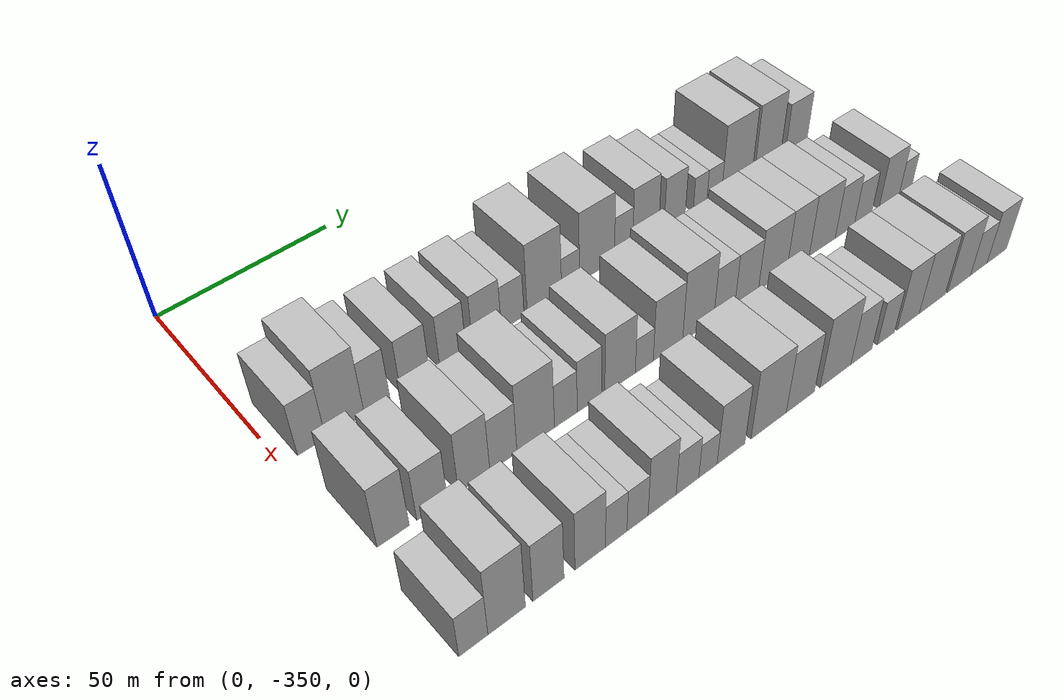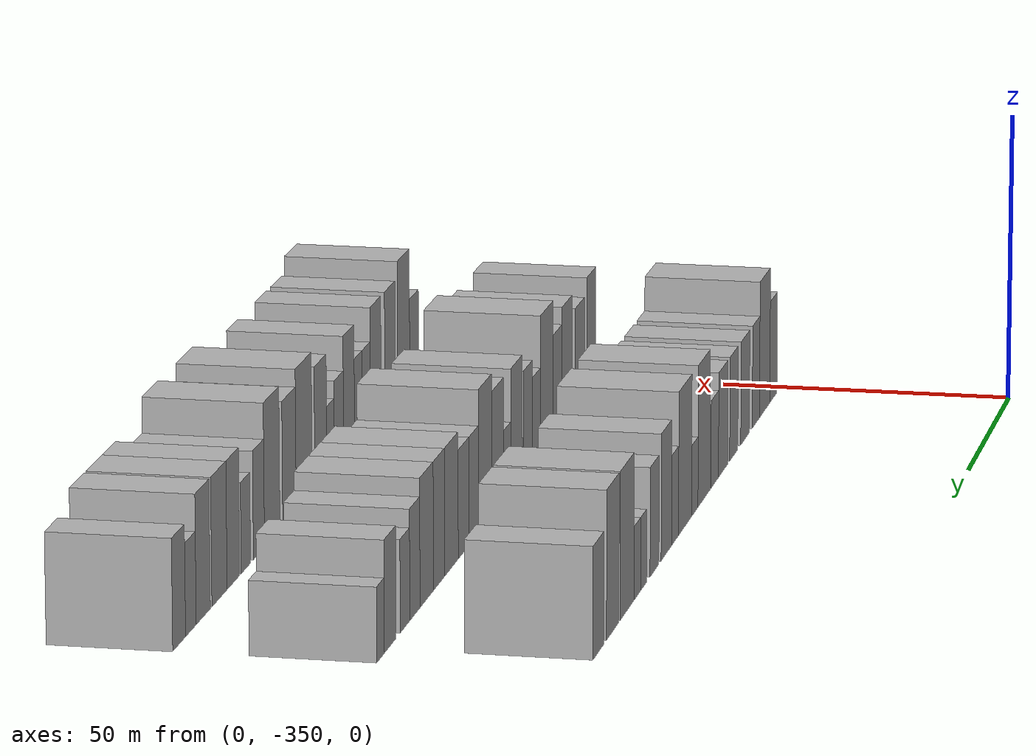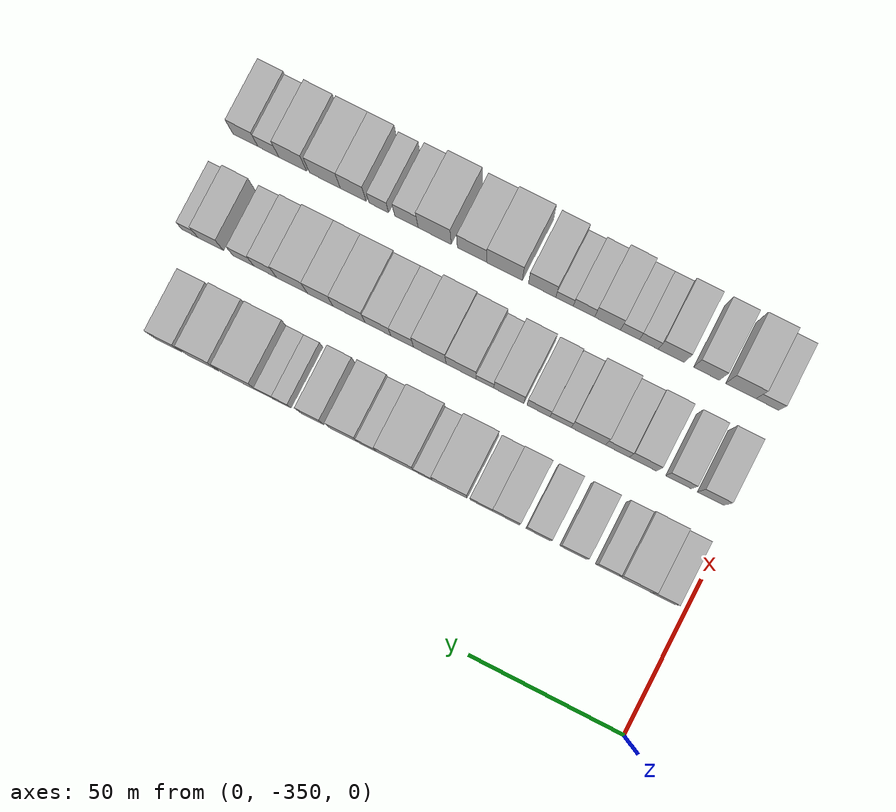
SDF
<sdf version="1.6">
 <world name="default">
  <model name="building_1">
   <static>1</static>
   <pose>50.0000 -342.2190 0 0.000000 0.000000 0.000000</pose>
   <link name="link">
    <pose>0 0 9.00 0 0 0</pose>
    <collision name="collision"><geometry><box><size>20.0000 7.5620 18.0000</size></box></geometry></collision>
    <visual name="visual">
     <cast_shadows>0</cast_shadows>
     <geometry><box><size>20.0000 7.5620 18.0000</size></box></geometry>
     <material>
      <script>
       <uri>model://HANNAS_wall/materials/scripts</uri>
       <uri>model://HANNAS_wall/materials/textures</uri>
       <name>vrc/HANNAS_wall</name>
      </script>
     </material>
    </visual>
   </link>
  </model>
  <model name="building_2">
   <static>1</static>
   <pose>50.0000 -333.1310 0 0.000000 0.000000 0.000000</pose>
   <link name="link">
    <pose>0 0 12.00 0 0 0</pose>
    <collision name="collision"><geometry><box><size>20.0000 10.6140 24.0000</size></box></geometry></collision>
    <visual name="visual">
     <cast_shadows>0</cast_shadows>
     <geometry><box><size>20.0000 10.6140 24.0000</size></box></geometry>
     <material>
      <script>
       <uri>model://HANNAS_wall/materials/scripts</uri>
       <uri>model://HANNAS_wall/materials/textures</uri>
       <name>vrc/HANNAS_wall</name>
      </script>
     </material>
    </visual>
   </link>
  </model>
  <model name="building_3">
   <static>1</static>
   <pose>50.0000 -324.1994 0 0.000000 0.000000 0.000000</pose>
   <link name="link">
    <pose>0 0 9.00 0 0 0</pose>
    <collision name="collision"><geometry><box><size>20.0000 7.2493 18.0000</size></box></geometry></collision>
    <visual name="visual">
     <cast_shadows>0</cast_shadows>
     <geometry><box><size>20.0000 7.2493 18.0000</size></box></geometry>
     <material>
      <script>
       <uri>model://HANNAS_wall/materials/scripts</uri>
       <uri>model://HANNAS_wall/materials/textures</uri>
       <name>vrc/HANNAS_wall</name>
      </script>
     </material>
    </visual>
   </link>
  </model>
  <model name="building_4">
   <static>1</static>
   <pose>50.0000 -313.3066 0 0.000000 0.000000 0.000000</pose>
   <link name="link">
    <pose>0 0 9.00 0 0 0</pose>
    <collision name="collision"><geometry><box><size>20.0000 8.5363 18.0000</size></box></geometry></collision>
    <visual name="visual">
     <cast_shadows>0</cast_shadows>
     <geometry><box><size>20.0000 8.5363 18.0000</size></box></geometry>
     <material>
      <script>
       <uri>model://HANNAS_wall/materials/scripts</uri>
       <uri>model://HANNAS_wall/materials/textures</uri>
       <name>vrc/HANNAS_wall</name>
      </script>
     </material>
    </visual>
   </link>
  </model>
  <model name="building_5">
   <static>1</static>
   <pose>50.0000 -302.0713 0 0.000000 0.000000 0.000000</pose>
   <link name="link">
    <pose>0 0 9.00 0 0 0</pose>
    <collision name="collision"><geometry><box><size>20.0000 7.9341 18.0000</size></box></geometry></collision>
    <visual name="visual">
     <cast_shadows>0</cast_shadows>
     <geometry><box><size>20.0000 7.9341 18.0000</size></box></geometry>
     <material>
      <script>
       <uri>model://HANNAS_wall/materials/scripts</uri>
       <uri>model://HANNAS_wall/materials/textures</uri>
       <name>vrc/HANNAS_wall</name>
      </script>
     </material>
    </visual>
   </link>
  </model>
  <model name="building_6">
   <static>1</static>
   <pose>50.0000 -291.6735 0 0.000000 0.000000 0.000000</pose>
   <link name="link">
    <pose>0 0 9.00 0 0 0</pose>
    <collision name="collision"><geometry><box><size>20.0000 8.8616 18.0000</size></box></geometry></collision>
    <visual name="visual">
     <cast_shadows>0</cast_shadows>
     <geometry><box><size>20.0000 8.8616 18.0000</size></box></geometry>
     <material>
      <script>
       <uri>model://HANNAS_wall/materials/scripts</uri>
       <uri>model://HANNAS_wall/materials/textures</uri>
       <name>vrc/HANNAS_wall</name>
      </script>
     </material>
    </visual>
   </link>
  </model>
  <model name="building_7">
   <static>1</static>
   <pose>50.0000 -283.6404 0 0.000000 0.000000 0.000000</pose>
   <link name="link">
    <pose>0 0 7.50 0 0 0</pose>
    <collision name="collision"><geometry><box><size>20.0000 7.2044 15.0000</size></box></geometry></collision>
    <visual name="visual">
     <cast_shadows>0</cast_shadows>
     <geometry><box><size>20.0000 7.2044 15.0000</size></box></geometry>
     <material>
      <script>
       <uri>model://HANNAS_wall/materials/scripts</uri>
       <uri>model://HANNAS_wall/materials/textures</uri>
       <name>vrc/HANNAS_wall</name>
      </script>
     </material>
    </visual>
   </link>
  </model>
  <model name="building_8">
   <static>1</static>
   <pose>50.0000 -273.4399 0 0.000000 0.000000 0.000000</pose>
   <link name="link">
    <pose>0 0 12.00 0 0 0</pose>
    <collision name="collision"><geometry><box><size>20.0000 11.1966 24.0000</size></box></geometry></collision>
    <visual name="visual">
     <cast_shadows>0</cast_shadows>
     <geometry><box><size>20.0000 11.1966 24.0000</size></box></geometry>
     <material>
      <script>
       <uri>model://HANNAS_wall/materials/scripts</uri>
       <uri>model://HANNAS_wall/materials/textures</uri>
       <name>vrc/HANNAS_wall</name>
      </script>
     </material>
    </visual>
   </link>
  </model>
  <model name="building_9">
   <static>1</static>
   <pose>50.0000 -264.8591 0 0.000000 0.000000 0.000000</pose>
   <link name="link">
    <pose>0 0 6.00 0 0 0</pose>
    <collision name="collision"><geometry><box><size>20.0000 5.9650 12.0000</size></box></geometry></collision>
    <visual name="visual">
     <cast_shadows>0</cast_shadows>
     <geometry><box><size>20.0000 5.9650 12.0000</size></box></geometry>
     <material>
      <script>
       <uri>model://HANNAS_wall/materials/scripts</uri>
       <uri>model://HANNAS_wall/materials/textures</uri>
       <name>vrc/HANNAS_wall</name>
      </script>
     </material>
    </visual>
   </link>
  </model>
  <model name="building_10">
   <static>1</static>
   <pose>50.0000 -255.8999 0 0.000000 0.000000 0.000000</pose>
   <link name="link">
    <pose>0 0 12.00 0 0 0</pose>
    <collision name="collision"><geometry><box><size>20.0000 11.9535 24.0000</size></box></geometry></collision>
    <visual name="visual">
     <cast_shadows>0</cast_shadows>
     <geometry><box><size>20.0000 11.9535 24.0000</size></box></geometry>
     <material>
      <script>
       <uri>model://HANNAS_wall/materials/scripts</uri>
       <uri>model://HANNAS_wall/materials/textures</uri>
       <name>vrc/HANNAS_wall</name>
      </script>
     </material>
    </visual>
   </link>
  </model>
  <model name="building_11">
   <static>1</static>
   <pose>50.0000 -246.7564 0 0.000000 0.000000 0.000000</pose>
   <link name="link">
    <pose>0 0 7.50 0 0 0</pose>
    <collision name="collision"><geometry><box><size>20.0000 6.3335 15.0000</size></box></geometry></collision>
    <visual name="visual">
     <cast_shadows>0</cast_shadows>
     <geometry><box><size>20.0000 6.3335 15.0000</size></box></geometry>
     <material>
      <script>
       <uri>model://HANNAS_wall/materials/scripts</uri>
       <uri>model://HANNAS_wall/materials/textures</uri>
       <name>vrc/HANNAS_wall</name>
      </script>
     </material>
    </visual>
   </link>
  </model>
  <model name="building_12">
   <static>1</static>
   <pose>50.0000 -238.9504 0 0.000000 0.000000 0.000000</pose>
   <link name="link">
    <pose>0 0 10.50 0 0 0</pose>
    <collision name="collision"><geometry><box><size>20.0000 9.2785 21.0000</size></box></geometry></collision>
    <visual name="visual">
     <cast_shadows>0</cast_shadows>
     <geometry><box><size>20.0000 9.2785 21.0000</size></box></geometry>
     <material>
      <script>
       <uri>model://HANNAS_wall/materials/scripts</uri>
       <uri>model://HANNAS_wall/materials/textures</uri>
       <name>vrc/HANNAS_wall</name>
      </script>
     </material>
    </visual>
   </link>
  </model>
  <model name="building_13">
   <static>1</static>
   <pose>50.0000 -228.4290 0 0.000000 0.000000 0.000000</pose>
   <link name="link">
    <pose>0 0 9.00 0 0 0</pose>
    <collision name="collision"><geometry><box><size>20.0000 7.7644 18.0000</size></box></geometry></collision>
    <visual name="visual">
     <cast_shadows>0</cast_shadows>
     <geometry><box><size>20.0000 7.7644 18.0000</size></box></geometry>
     <material>
      <script>
       <uri>model://HANNAS_wall/materials/scripts</uri>
       <uri>model://HANNAS_wall/materials/textures</uri>
       <name>vrc/HANNAS_wall</name>
      </script>
     </material>
    </visual>
   </link>
  </model>
  <model name="building_14">
   <static>1</static>
   <pose>50.0000 -219.0100 0 0.000000 0.000000 0.000000</pose>
   <link name="link">
    <pose>0 0 6.00 0 0 0</pose>
    <collision name="collision"><geometry><box><size>20.0000 5.0735 12.0000</size></box></geometry></collision>
    <visual name="visual">
     <cast_shadows>0</cast_shadows>
     <geometry><box><size>20.0000 5.0735 12.0000</size></box></geometry>
     <material>
      <script>
       <uri>model://HANNAS_wall/materials/scripts</uri>
       <uri>model://HANNAS_wall/materials/textures</uri>
       <name>vrc/HANNAS_wall</name>
      </script>
     </material>
    </visual>
   </link>
  </model>
  <model name="building_15">
   <static>1</static>
   <pose>50.0000 -213.6350 0 0.000000 0.000000 0.000000</pose>
   <link name="link">
    <pose>0 0 6.00 0 0 0</pose>
    <collision name="collision"><geometry><box><size>20.0000 5.6767 12.0000</size></box></geometry></collision>
    <visual name="visual">
     <cast_shadows>0</cast_shadows>
     <geometry><box><size>20.0000 5.6767 12.0000</size></box></geometry>
     <material>
      <script>
       <uri>model://HANNAS_wall/materials/scripts</uri>
       <uri>model://HANNAS_wall/materials/textures</uri>
       <name>vrc/HANNAS_wall</name>
      </script>
     </material>
    </visual>
   </link>
  </model>
  <model name="building_16">
   <static>1</static>
   <pose>50.0000 -204.8736 0 0.000000 0.000000 0.000000</pose>
   <link name="link">
    <pose>0 0 12.00 0 0 0</pose>
    <collision name="collision"><geometry><box><size>20.0000 11.8460 24.0000</size></box></geometry></collision>
    <visual name="visual">
     <cast_shadows>0</cast_shadows>
     <geometry><box><size>20.0000 11.8460 24.0000</size></box></geometry>
     <material>
      <script>
       <uri>model://HANNAS_wall/materials/scripts</uri>
       <uri>model://HANNAS_wall/materials/textures</uri>
       <name>vrc/HANNAS_wall</name>
      </script>
     </material>
    </visual>
   </link>
  </model>
  <model name="building_17">
   <static>1</static>
   <pose>50.0000 -192.7813 0 0.000000 0.000000 0.000000</pose>
   <link name="link">
    <pose>0 0 12.00 0 0 0</pose>
    <collision name="collision"><geometry><box><size>20.0000 10.3386 24.0000</size></box></geometry></collision>
    <visual name="visual">
     <cast_shadows>0</cast_shadows>
     <geometry><box><size>20.0000 10.3386 24.0000</size></box></geometry>
     <material>
      <script>
       <uri>model://HANNAS_wall/materials/scripts</uri>
       <uri>model://HANNAS_wall/materials/textures</uri>
       <name>vrc/HANNAS_wall</name>
      </script>
     </material>
    </visual>
   </link>
  </model>
  <model name="building_18">
   <static>1</static>
   <pose>50.0000 -181.1529 0 0.000000 0.000000 0.000000</pose>
   <link name="link">
    <pose>0 0 9.00 0 0 0</pose>
    <collision name="collision"><geometry><box><size>20.0000 8.9184 18.0000</size></box></geometry></collision>
    <visual name="visual">
     <cast_shadows>0</cast_shadows>
     <geometry><box><size>20.0000 8.9184 18.0000</size></box></geometry>
     <material>
      <script>
       <uri>model://HANNAS_wall/materials/scripts</uri>
       <uri>model://HANNAS_wall/materials/textures</uri>
       <name>vrc/HANNAS_wall</name>
      </script>
     </material>
    </visual>
   </link>
  </model>
  <model name="building_73">
   <static>1</static>
   <pose>82.0000 -341.7778 0 0.000000 0.000000 0.000000</pose>
   <link name="link">
    <pose>0 0 10.50 0 0 0</pose>
    <collision name="collision"><geometry><box><size>20.0000 8.4443 21.0000</size></box></geometry></collision>
    <visual name="visual">
     <cast_shadows>0</cast_shadows>
     <geometry><box><size>20.0000 8.4443 21.0000</size></box></geometry>
     <material>
      <script>
       <uri>model://HANNAS_wall/materials/scripts</uri>
       <uri>model://HANNAS_wall/materials/textures</uri>
       <name>vrc/HANNAS_wall</name>
      </script>
     </material>
    </visual>
   </link>
  </model>
  <model name="building_74">
   <static>1</static>
   <pose>82.0000 -331.4087 0 0.000000 0.000000 0.000000</pose>
   <link name="link">
    <pose>0 0 9.00 0 0 0</pose>
    <collision name="collision"><geometry><box><size>20.0000 8.2939 18.0000</size></box></geometry></collision>
    <visual name="visual">
     <cast_shadows>0</cast_shadows>
     <geometry><box><size>20.0000 8.2939 18.0000</size></box></geometry>
     <material>
      <script>
       <uri>model://HANNAS_wall/materials/scripts</uri>
       <uri>model://HANNAS_wall/materials/textures</uri>
       <name>vrc/HANNAS_wall</name>
      </script>
     </material>
    </visual>
   </link>
  </model>
  <model name="building_75">
   <static>1</static>
   <pose>82.0000 -319.8608 0 0.000000 0.000000 0.000000</pose>
   <link name="link">
    <pose>0 0 10.50 0 0 0</pose>
    <collision name="collision"><geometry><box><size>20.0000 8.8019 21.0000</size></box></geometry></collision>
    <visual name="visual">
     <cast_shadows>0</cast_shadows>
     <geometry><box><size>20.0000 8.8019 21.0000</size></box></geometry>
     <material>
      <script>
       <uri>model://HANNAS_wall/materials/scripts</uri>
       <uri>model://HANNAS_wall/materials/textures</uri>
       <name>vrc/HANNAS_wall</name>
      </script>
     </material>
    </visual>
   </link>
  </model>
  <model name="building_76">
   <static>1</static>
   <pose>82.0000 -311.5618 0 0.000000 0.000000 0.000000</pose>
   <link name="link">
    <pose>0 0 9.00 0 0 0</pose>
    <collision name="collision"><geometry><box><size>20.0000 7.7960 18.0000</size></box></geometry></collision>
    <visual name="visual">
     <cast_shadows>0</cast_shadows>
     <geometry><box><size>20.0000 7.7960 18.0000</size></box></geometry>
     <material>
      <script>
       <uri>model://HANNAS_wall/materials/scripts</uri>
       <uri>model://HANNAS_wall/materials/textures</uri>
       <name>vrc/HANNAS_wall</name>
      </script>
     </material>
    </visual>
   </link>
  </model>
  <model name="building_77">
   <static>1</static>
   <pose>82.0000 -302.1254 0 0.000000 0.000000 0.000000</pose>
   <link name="link">
    <pose>0 0 12.00 0 0 0</pose>
    <collision name="collision"><geometry><box><size>20.0000 11.0768 24.0000</size></box></geometry></collision>
    <visual name="visual">
     <cast_shadows>0</cast_shadows>
     <geometry><box><size>20.0000 11.0768 24.0000</size></box></geometry>
     <material>
      <script>
       <uri>model://HANNAS_wall/materials/scripts</uri>
       <uri>model://HANNAS_wall/materials/textures</uri>
       <name>vrc/HANNAS_wall</name>
      </script>
     </material>
    </visual>
   </link>
  </model>
  <model name="building_78">
   <static>1</static>
   <pose>82.0000 -293.1417 0 0.000000 0.000000 0.000000</pose>
   <link name="link">
    <pose>0 0 7.50 0 0 0</pose>
    <collision name="collision"><geometry><box><size>20.0000 6.8906 15.0000</size></box></geometry></collision>
    <visual name="visual">
     <cast_shadows>0</cast_shadows>
     <geometry><box><size>20.0000 6.8906 15.0000</size></box></geometry>
     <material>
      <script>
       <uri>model://HANNAS_wall/materials/scripts</uri>
       <uri>model://HANNAS_wall/materials/textures</uri>
       <name>vrc/HANNAS_wall</name>
      </script>
     </material>
    </visual>
   </link>
  </model>
  <model name="building_79">
   <static>1</static>
   <pose>82.0000 -285.9240 0 0.000000 0.000000 0.000000</pose>
   <link name="link">
    <pose>0 0 9.00 0 0 0</pose>
    <collision name="collision"><geometry><box><size>20.0000 7.5448 18.0000</size></box></geometry></collision>
    <visual name="visual">
     <cast_shadows>0</cast_shadows>
     <geometry><box><size>20.0000 7.5448 18.0000</size></box></geometry>
     <material>
      <script>
       <uri>model://HANNAS_wall/materials/scripts</uri>
       <uri>model://HANNAS_wall/materials/textures</uri>
       <name>vrc/HANNAS_wall</name>
      </script>
     </material>
    </visual>
   </link>
  </model>
  <model name="building_80">
   <static>1</static>
   <pose>82.0000 -276.2814 0 0.000000 0.000000 0.000000</pose>
   <link name="link">
    <pose>0 0 10.50 0 0 0</pose>
    <collision name="collision"><geometry><box><size>20.0000 9.7404 21.0000</size></box></geometry></collision>
    <visual name="visual">
     <cast_shadows>0</cast_shadows>
     <geometry><box><size>20.0000 9.7404 21.0000</size></box></geometry>
     <material>
      <script>
       <uri>model://HANNAS_wall/materials/scripts</uri>
       <uri>model://HANNAS_wall/materials/textures</uri>
       <name>vrc/HANNAS_wall</name>
      </script>
     </material>
    </visual>
   </link>
  </model>
  <model name="building_81">
   <static>1</static>
   <pose>82.0000 -268.4903 0 0.000000 0.000000 0.000000</pose>
   <link name="link">
    <pose>0 0 6.00 0 0 0</pose>
    <collision name="collision"><geometry><box><size>20.0000 5.8418 12.0000</size></box></geometry></collision>
    <visual name="visual">
     <cast_shadows>0</cast_shadows>
     <geometry><box><size>20.0000 5.8418 12.0000</size></box></geometry>
     <material>
      <script>
       <uri>model://HANNAS_wall/materials/scripts</uri>
       <uri>model://HANNAS_wall/materials/textures</uri>
       <name>vrc/HANNAS_wall</name>
      </script>
     </material>
    </visual>
   </link>
  </model>
  <model name="building_82">
   <static>1</static>
   <pose>82.0000 -260.6777 0 0.000000 0.000000 0.000000</pose>
   <link name="link">
    <pose>0 0 10.50 0 0 0</pose>
    <collision name="collision"><geometry><box><size>20.0000 9.7833 21.0000</size></box></geometry></collision>
    <visual name="visual">
     <cast_shadows>0</cast_shadows>
     <geometry><box><size>20.0000 9.7833 21.0000</size></box></geometry>
     <material>
      <script>
       <uri>model://HANNAS_wall/materials/scripts</uri>
       <uri>model://HANNAS_wall/materials/textures</uri>
       <name>vrc/HANNAS_wall</name>
      </script>
     </material>
    </visual>
   </link>
  </model>
  <model name="building_83">
   <static>1</static>
   <pose>82.0000 -250.4594 0 0.000000 0.000000 0.000000</pose>
   <link name="link">
    <pose>0 0 12.00 0 0 0</pose>
    <collision name="collision"><geometry><box><size>20.0000 10.6534 24.0000</size></box></geometry></collision>
    <visual name="visual">
     <cast_shadows>0</cast_shadows>
     <geometry><box><size>20.0000 10.6534 24.0000</size></box></geometry>
     <material>
      <script>
       <uri>model://HANNAS_wall/materials/scripts</uri>
       <uri>model://HANNAS_wall/materials/textures</uri>
       <name>vrc/HANNAS_wall</name>
      </script>
     </material>
    </visual>
   </link>
  </model>
  <model name="building_84">
   <static>1</static>
   <pose>82.0000 -241.4067 0 0.000000 0.000000 0.000000</pose>
   <link name="link">
    <pose>0 0 9.00 0 0 0</pose>
    <collision name="collision"><geometry><box><size>20.0000 7.4518 18.0000</size></box></geometry></collision>
    <visual name="visual">
     <cast_shadows>0</cast_shadows>
     <geometry><box><size>20.0000 7.4518 18.0000</size></box></geometry>
     <material>
      <script>
       <uri>model://HANNAS_wall/materials/scripts</uri>
       <uri>model://HANNAS_wall/materials/textures</uri>
       <name>vrc/HANNAS_wall</name>
      </script>
     </material>
    </visual>
   </link>
  </model>
  <model name="building_85">
   <static>1</static>
   <pose>82.0000 -233.4323 0 0.000000 0.000000 0.000000</pose>
   <link name="link">
    <pose>0 0 9.00 0 0 0</pose>
    <collision name="collision"><geometry><box><size>20.0000 8.4970 18.0000</size></box></geometry></collision>
    <visual name="visual">
     <cast_shadows>0</cast_shadows>
     <geometry><box><size>20.0000 8.4970 18.0000</size></box></geometry>
     <material>
      <script>
       <uri>model://HANNAS_wall/materials/scripts</uri>
       <uri>model://HANNAS_wall/materials/textures</uri>
       <name>vrc/HANNAS_wall</name>
      </script>
     </material>
    </visual>
   </link>
  </model>
  <model name="building_86">
   <static>1</static>
   <pose>82.0000 -223.9514 0 0.000000 0.000000 0.000000</pose>
   <link name="link">
    <pose>0 0 10.50 0 0 0</pose>
    <collision name="collision"><geometry><box><size>20.0000 10.4647 21.0000</size></box></geometry></collision>
    <visual name="visual">
     <cast_shadows>0</cast_shadows>
     <geometry><box><size>20.0000 10.4647 21.0000</size></box></geometry>
     <material>
      <script>
       <uri>model://HANNAS_wall/materials/scripts</uri>
       <uri>model://HANNAS_wall/materials/textures</uri>
       <name>vrc/HANNAS_wall</name>
      </script>
     </material>
    </visual>
   </link>
  </model>
  <model name="building_87">
   <static>1</static>
   <pose>82.0000 -214.4662 0 0.000000 0.000000 0.000000</pose>
   <link name="link">
    <pose>0 0 10.50 0 0 0</pose>
    <collision name="collision"><geometry><box><size>20.0000 8.5058 21.0000</size></box></geometry></collision>
    <visual name="visual">
     <cast_shadows>0</cast_shadows>
     <geometry><box><size>20.0000 8.5058 21.0000</size></box></geometry>
     <material>
      <script>
       <uri>model://HANNAS_wall/materials/scripts</uri>
       <uri>model://HANNAS_wall/materials/textures</uri>
       <name>vrc/HANNAS_wall</name>
      </script>
     </material>
    </visual>
   </link>
  </model>
  <model name="building_88">
   <static>1</static>
   <pose>82.0000 -205.1605 0 0.000000 0.000000 0.000000</pose>
   <link name="link">
    <pose>0 0 10.50 0 0 0</pose>
    <collision name="collision"><geometry><box><size>20.0000 10.1057 21.0000</size></box></geometry></collision>
    <visual name="visual">
     <cast_shadows>0</cast_shadows>
     <geometry><box><size>20.0000 10.1057 21.0000</size></box></geometry>
     <material>
      <script>
       <uri>model://HANNAS_wall/materials/scripts</uri>
       <uri>model://HANNAS_wall/materials/textures</uri>
       <name>vrc/HANNAS_wall</name>
      </script>
     </material>
    </visual>
   </link>
  </model>
  <model name="building_89">
   <static>1</static>
   <pose>82.0000 -196.3350 0 0.000000 0.000000 0.000000</pose>
   <link name="link">
    <pose>0 0 9.00 0 0 0</pose>
    <collision name="collision"><geometry><box><size>20.0000 7.5452 18.0000</size></box></geometry></collision>
    <visual name="visual">
     <cast_shadows>0</cast_shadows>
     <geometry><box><size>20.0000 7.5452 18.0000</size></box></geometry>
     <material>
      <script>
       <uri>model://HANNAS_wall/materials/scripts</uri>
       <uri>model://HANNAS_wall/materials/textures</uri>
       <name>vrc/HANNAS_wall</name>
      </script>
     </material>
    </visual>
   </link>
  </model>
  <model name="building_90">
   <static>1</static>
   <pose>82.0000 -189.0517 0 0.000000 0.000000 0.000000</pose>
   <link name="link">
    <pose>0 0 7.50 0 0 0</pose>
    <collision name="collision"><geometry><box><size>20.0000 7.0215 15.0000</size></box></geometry></collision>
    <visual name="visual">
     <cast_shadows>0</cast_shadows>
     <geometry><box><size>20.0000 7.0215 15.0000</size></box></geometry>
     <material>
      <script>
       <uri>model://HANNAS_wall/materials/scripts</uri>
       <uri>model://HANNAS_wall/materials/textures</uri>
       <name>vrc/HANNAS_wall</name>
      </script>
     </material>
    </visual>
   </link>
  </model>
  <model name="building_91">
   <static>1</static>
   <pose>82.0000 -178.3345 0 0.000000 0.000000 0.000000</pose>
   <link name="link">
    <pose>0 0 9.00 0 0 0</pose>
    <collision name="collision"><geometry><box><size>20.0000 8.4129 18.0000</size></box></geometry></collision>
    <visual name="visual">
     <cast_shadows>0</cast_shadows>
     <geometry><box><size>20.0000 8.4129 18.0000</size></box></geometry>
     <material>
      <script>
       <uri>model://HANNAS_wall/materials/scripts</uri>
       <uri>model://HANNAS_wall/materials/textures</uri>
       <name>vrc/HANNAS_wall</name>
      </script>
     </material>
    </visual>
   </link>
  </model>
  <model name="building_92">
   <static>1</static>
   <pose>82.0000 -171.4803 0 0.000000 0.000000 0.000000</pose>
   <link name="link">
    <pose>0 0 6.00 0 0 0</pose>
    <collision name="collision"><geometry><box><size>20.0000 5.2954 12.0000</size></box></geometry></collision>
    <visual name="visual">
     <cast_shadows>0</cast_shadows>
     <geometry><box><size>20.0000 5.2954 12.0000</size></box></geometry>
     <material>
      <script>
       <uri>model://HANNAS_wall/materials/scripts</uri>
       <uri>model://HANNAS_wall/materials/textures</uri>
       <name>vrc/HANNAS_wall</name>
      </script>
     </material>
    </visual>
   </link>
  </model>
  <model name="building_151">
   <static>1</static>
   <pose>114.0000 -344.2960 0 0.000000 0.000000 0.000000</pose>
   <link name="link">
    <pose>0 0 7.50 0 0 0</pose>
    <collision name="collision"><geometry><box><size>20.0000 7.4080 15.0000</size></box></geometry></collision>
    <visual name="visual">
     <cast_shadows>0</cast_shadows>
     <geometry><box><size>20.0000 7.4080 15.0000</size></box></geometry>
     <material>
      <script>
       <uri>model://HANNAS_wall/materials/scripts</uri>
       <uri>model://HANNAS_wall/materials/textures</uri>
       <name>vrc/HANNAS_wall</name>
      </script>
     </material>
    </visual>
   </link>
  </model>
  <model name="building_152">
   <static>1</static>
   <pose>114.0000 -335.6997 0 0.000000 0.000000 0.000000</pose>
   <link name="link">
    <pose>0 0 12.00 0 0 0</pose>
    <collision name="collision"><geometry><box><size>20.0000 9.7846 24.0000</size></box></geometry></collision>
    <visual name="visual">
     <cast_shadows>0</cast_shadows>
     <geometry><box><size>20.0000 9.7846 24.0000</size></box></geometry>
     <material>
      <script>
       <uri>model://HANNAS_wall/materials/scripts</uri>
       <uri>model://HANNAS_wall/materials/textures</uri>
       <name>vrc/HANNAS_wall</name>
      </script>
     </material>
    </visual>
   </link>
  </model>
  <model name="building_153">
   <static>1</static>
   <pose>114.0000 -324.6046 0 0.000000 0.000000 0.000000</pose>
   <link name="link">
    <pose>0 0 10.50 0 0 0</pose>
    <collision name="collision"><geometry><box><size>20.0000 8.4055 21.0000</size></box></geometry></collision>
    <visual name="visual">
     <cast_shadows>0</cast_shadows>
     <geometry><box><size>20.0000 8.4055 21.0000</size></box></geometry>
     <material>
      <script>
       <uri>model://HANNAS_wall/materials/scripts</uri>
       <uri>model://HANNAS_wall/materials/textures</uri>
       <name>vrc/HANNAS_wall</name>
      </script>
     </material>
    </visual>
   </link>
  </model>
  <model name="building_154">
   <static>1</static>
   <pose>114.0000 -313.1347 0 0.000000 0.000000 0.000000</pose>
   <link name="link">
    <pose>0 0 10.50 0 0 0</pose>
    <collision name="collision"><geometry><box><size>20.0000 8.5343 21.0000</size></box></geometry></collision>
    <visual name="visual">
     <cast_shadows>0</cast_shadows>
     <geometry><box><size>20.0000 8.5343 21.0000</size></box></geometry>
     <material>
      <script>
       <uri>model://HANNAS_wall/materials/scripts</uri>
       <uri>model://HANNAS_wall/materials/textures</uri>
       <name>vrc/HANNAS_wall</name>
      </script>
     </material>
    </visual>
   </link>
  </model>
  <model name="building_155">
   <static>1</static>
   <pose>114.0000 -305.7588 0 0.000000 0.000000 0.000000</pose>
   <link name="link">
    <pose>0 0 7.50 0 0 0</pose>
    <collision name="collision"><geometry><box><size>20.0000 6.2175 15.0000</size></box></geometry></collision>
    <visual name="visual">
     <cast_shadows>0</cast_shadows>
     <geometry><box><size>20.0000 6.2175 15.0000</size></box></geometry>
     <material>
      <script>
       <uri>model://HANNAS_wall/materials/scripts</uri>
       <uri>model://HANNAS_wall/materials/textures</uri>
       <name>vrc/HANNAS_wall</name>
      </script>
     </material>
    </visual>
   </link>
  </model>
  <model name="building_156">
   <static>1</static>
   <pose>114.0000 -299.5609 0 0.000000 0.000000 0.000000</pose>
   <link name="link">
    <pose>0 0 7.50 0 0 0</pose>
    <collision name="collision"><geometry><box><size>20.0000 6.1783 15.0000</size></box></geometry></collision>
    <visual name="visual">
     <cast_shadows>0</cast_shadows>
     <geometry><box><size>20.0000 6.1783 15.0000</size></box></geometry>
     <material>
      <script>
       <uri>model://HANNAS_wall/materials/scripts</uri>
       <uri>model://HANNAS_wall/materials/textures</uri>
       <name>vrc/HANNAS_wall</name>
      </script>
     </material>
    </visual>
   </link>
  </model>
  <model name="building_157">
   <static>1</static>
   <pose>114.0000 -292.2697 0 0.000000 0.000000 0.000000</pose>
   <link name="link">
    <pose>0 0 10.50 0 0 0</pose>
    <collision name="collision"><geometry><box><size>20.0000 8.4042 21.0000</size></box></geometry></collision>
    <visual name="visual">
     <cast_shadows>0</cast_shadows>
     <geometry><box><size>20.0000 8.4042 21.0000</size></box></geometry>
     <material>
      <script>
       <uri>model://HANNAS_wall/materials/scripts</uri>
       <uri>model://HANNAS_wall/materials/textures</uri>
       <name>vrc/HANNAS_wall</name>
      </script>
     </material>
    </visual>
   </link>
  </model>
  <model name="building_158">
   <static>1</static>
   <pose>114.0000 -284.5799 0 0.000000 0.000000 0.000000</pose>
   <link name="link">
    <pose>0 0 7.50 0 0 0</pose>
    <collision name="collision"><geometry><box><size>20.0000 6.9752 15.0000</size></box></geometry></collision>
    <visual name="visual">
     <cast_shadows>0</cast_shadows>
     <geometry><box><size>20.0000 6.9752 15.0000</size></box></geometry>
     <material>
      <script>
       <uri>model://HANNAS_wall/materials/scripts</uri>
       <uri>model://HANNAS_wall/materials/textures</uri>
       <name>vrc/HANNAS_wall</name>
      </script>
     </material>
    </visual>
   </link>
  </model>
  <model name="building_159">
   <static>1</static>
   <pose>114.0000 -278.2292 0 0.000000 0.000000 0.000000</pose>
   <link name="link">
    <pose>0 0 6.00 0 0 0</pose>
    <collision name="collision"><geometry><box><size>20.0000 5.7263 12.0000</size></box></geometry></collision>
    <visual name="visual">
     <cast_shadows>0</cast_shadows>
     <geometry><box><size>20.0000 5.7263 12.0000</size></box></geometry>
     <material>
      <script>
       <uri>model://HANNAS_wall/materials/scripts</uri>
       <uri>model://HANNAS_wall/materials/textures</uri>
       <name>vrc/HANNAS_wall</name>
      </script>
     </material>
    </visual>
   </link>
  </model>
  <model name="building_160">
   <static>1</static>
   <pose>114.0000 -270.8840 0 0.000000 0.000000 0.000000</pose>
   <link name="link">
    <pose>0 0 10.50 0 0 0</pose>
    <collision name="collision"><geometry><box><size>20.0000 8.9639 21.0000</size></box></geometry></collision>
    <visual name="visual">
     <cast_shadows>0</cast_shadows>
     <geometry><box><size>20.0000 8.9639 21.0000</size></box></geometry>
     <material>
      <script>
       <uri>model://HANNAS_wall/materials/scripts</uri>
       <uri>model://HANNAS_wall/materials/textures</uri>
       <name>vrc/HANNAS_wall</name>
      </script>
     </material>
    </visual>
   </link>
  </model>
  <model name="building_161">
   <static>1</static>
   <pose>114.0000 -258.5549 0 0.000000 0.000000 0.000000</pose>
   <link name="link">
    <pose>0 0 12.00 0 0 0</pose>
    <collision name="collision"><geometry><box><size>20.0000 11.6943 24.0000</size></box></geometry></collision>
    <visual name="visual">
     <cast_shadows>0</cast_shadows>
     <geometry><box><size>20.0000 11.6943 24.0000</size></box></geometry>
     <material>
      <script>
       <uri>model://HANNAS_wall/materials/scripts</uri>
       <uri>model://HANNAS_wall/materials/textures</uri>
       <name>vrc/HANNAS_wall</name>
      </script>
     </material>
    </visual>
   </link>
  </model>
  <model name="building_162">
   <static>1</static>
   <pose>114.0000 -247.8644 0 0.000000 0.000000 0.000000</pose>
   <link name="link">
    <pose>0 0 10.50 0 0 0</pose>
    <collision name="collision"><geometry><box><size>20.0000 9.6867 21.0000</size></box></geometry></collision>
    <visual name="visual">
     <cast_shadows>0</cast_shadows>
     <geometry><box><size>20.0000 9.6867 21.0000</size></box></geometry>
     <material>
      <script>
       <uri>model://HANNAS_wall/materials/scripts</uri>
       <uri>model://HANNAS_wall/materials/textures</uri>
       <name>vrc/HANNAS_wall</name>
      </script>
     </material>
    </visual>
   </link>
  </model>
  <model name="building_163">
   <static>1</static>
   <pose>114.0000 -235.5536 0 0.000000 0.000000 0.000000</pose>
   <link name="link">
    <pose>0 0 12.00 0 0 0</pose>
    <collision name="collision"><geometry><box><size>20.0000 10.9350 24.0000</size></box></geometry></collision>
    <visual name="visual">
     <cast_shadows>0</cast_shadows>
     <geometry><box><size>20.0000 10.9350 24.0000</size></box></geometry>
     <material>
      <script>
       <uri>model://HANNAS_wall/materials/scripts</uri>
       <uri>model://HANNAS_wall/materials/textures</uri>
       <name>vrc/HANNAS_wall</name>
      </script>
     </material>
    </visual>
   </link>
  </model>
  <model name="building_164">
   <static>1</static>
   <pose>114.0000 -226.2284 0 0.000000 0.000000 0.000000</pose>
   <link name="link">
    <pose>0 0 9.00 0 0 0</pose>
    <collision name="collision"><geometry><box><size>20.0000 7.7153 18.0000</size></box></geometry></collision>
    <visual name="visual">
     <cast_shadows>0</cast_shadows>
     <geometry><box><size>20.0000 7.7153 18.0000</size></box></geometry>
     <material>
      <script>
       <uri>model://HANNAS_wall/materials/scripts</uri>
       <uri>model://HANNAS_wall/materials/textures</uri>
       <name>vrc/HANNAS_wall</name>
      </script>
     </material>
    </visual>
   </link>
  </model>
  <model name="building_165">
   <static>1</static>
   <pose>114.0000 -217.1563 0 0.000000 0.000000 0.000000</pose>
   <link name="link">
    <pose>0 0 7.50 0 0 0</pose>
    <collision name="collision"><geometry><box><size>20.0000 6.4290 15.0000</size></box></geometry></collision>
    <visual name="visual">
     <cast_shadows>0</cast_shadows>
     <geometry><box><size>20.0000 6.4290 15.0000</size></box></geometry>
     <material>
      <script>
       <uri>model://HANNAS_wall/materials/scripts</uri>
       <uri>model://HANNAS_wall/materials/textures</uri>
       <name>vrc/HANNAS_wall</name>
      </script>
     </material>
    </visual>
   </link>
  </model>
  <model name="building_166">
   <static>1</static>
   <pose>114.0000 -208.6870 0 0.000000 0.000000 0.000000</pose>
   <link name="link">
    <pose>0 0 10.50 0 0 0</pose>
    <collision name="collision"><geometry><box><size>20.0000 8.5096 21.0000</size></box></geometry></collision>
    <visual name="visual">
     <cast_shadows>0</cast_shadows>
     <geometry><box><size>20.0000 8.5096 21.0000</size></box></geometry>
     <material>
      <script>
       <uri>model://HANNAS_wall/materials/scripts</uri>
       <uri>model://HANNAS_wall/materials/textures</uri>
       <name>vrc/HANNAS_wall</name>
      </script>
     </material>
    </visual>
   </link>
  </model>
  <model name="building_167">
   <static>1</static>
   <pose>114.0000 -199.3294 0 0.000000 0.000000 0.000000</pose>
   <link name="link">
    <pose>0 0 10.50 0 0 0</pose>
    <collision name="collision"><geometry><box><size>20.0000 10.2055 21.0000</size></box></geometry></collision>
    <visual name="visual">
     <cast_shadows>0</cast_shadows>
     <geometry><box><size>20.0000 10.2055 21.0000</size></box></geometry>
     <material>
      <script>
       <uri>model://HANNAS_wall/materials/scripts</uri>
       <uri>model://HANNAS_wall/materials/textures</uri>
       <name>vrc/HANNAS_wall</name>
      </script>
     </material>
    </visual>
   </link>
  </model>
  <model name="building_168">
   <static>1</static>
   <pose>114.0000 -188.5989 0 0.000000 0.000000 0.000000</pose>
   <link name="link">
    <pose>0 0 10.50 0 0 0</pose>
    <collision name="collision"><geometry><box><size>20.0000 9.2554 21.0000</size></box></geometry></collision>
    <visual name="visual">
     <cast_shadows>0</cast_shadows>
     <geometry><box><size>20.0000 9.2554 21.0000</size></box></geometry>
     <material>
      <script>
       <uri>model://HANNAS_wall/materials/scripts</uri>
       <uri>model://HANNAS_wall/materials/textures</uri>
       <name>vrc/HANNAS_wall</name>
      </script>
     </material>
    </visual>
   </link>
  </model>
  <model name="building_169">
   <static>1</static>
   <pose>114.0000 -180.5221 0 0.000000 0.000000 0.000000</pose>
   <link name="link">
    <pose>0 0 7.50 0 0 0</pose>
    <collision name="collision"><geometry><box><size>20.0000 6.8982 15.0000</size></box></geometry></collision>
    <visual name="visual">
     <cast_shadows>0</cast_shadows>
     <geometry><box><size>20.0000 6.8982 15.0000</size></box></geometry>
     <material>
      <script>
       <uri>model://HANNAS_wall/materials/scripts</uri>
       <uri>model://HANNAS_wall/materials/textures</uri>
       <name>vrc/HANNAS_wall</name>
      </script>
     </material>
    </visual>
   </link>
  </model>
  <model name="building_170">
   <static>1</static>
   <pose>114.0000 -172.9448 0 0.000000 0.000000 0.000000</pose>
   <link name="link">
    <pose>0 0 9.00 0 0 0</pose>
    <collision name="collision"><geometry><box><size>20.0000 8.2564 18.0000</size></box></geometry></collision>
    <visual name="visual">
     <cast_shadows>0</cast_shadows>
     <geometry><box><size>20.0000 8.2564 18.0000</size></box></geometry>
     <material>
      <script>
       <uri>model://HANNAS_wall/materials/scripts</uri>
       <uri>model://HANNAS_wall/materials/textures</uri>
       <name>vrc/HANNAS_wall</name>
      </script>
     </material>
    </visual>
   </link>
  </model>
 </world>
</sdf>
